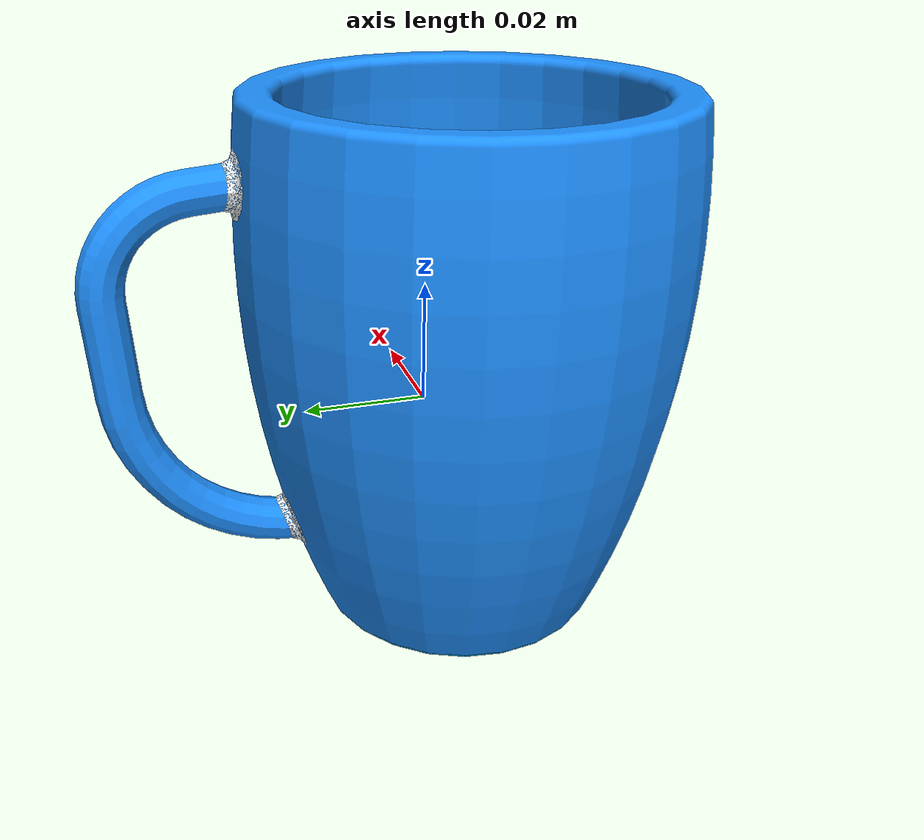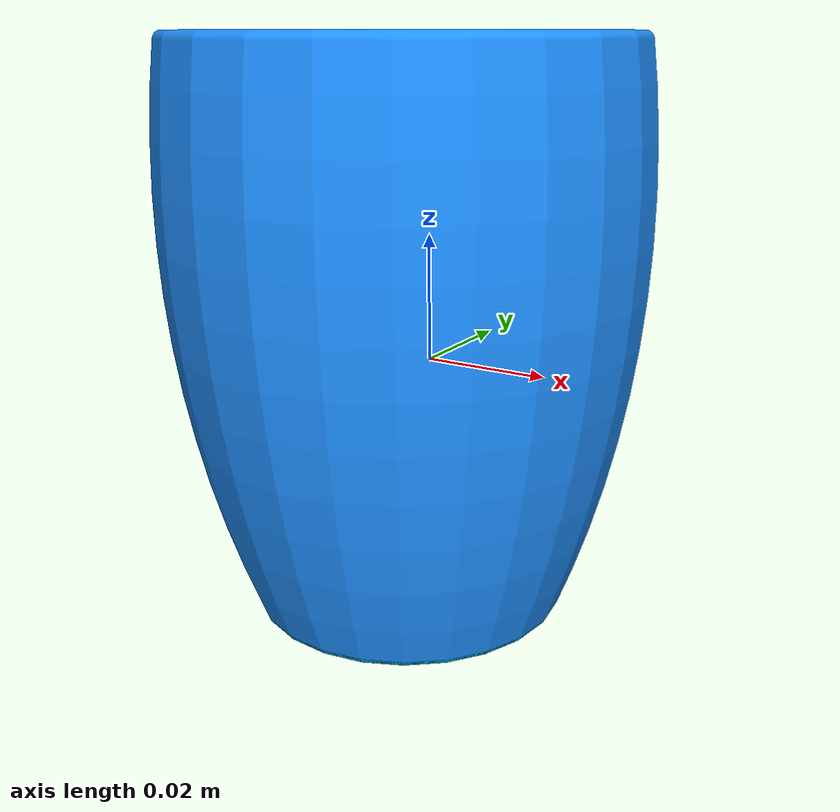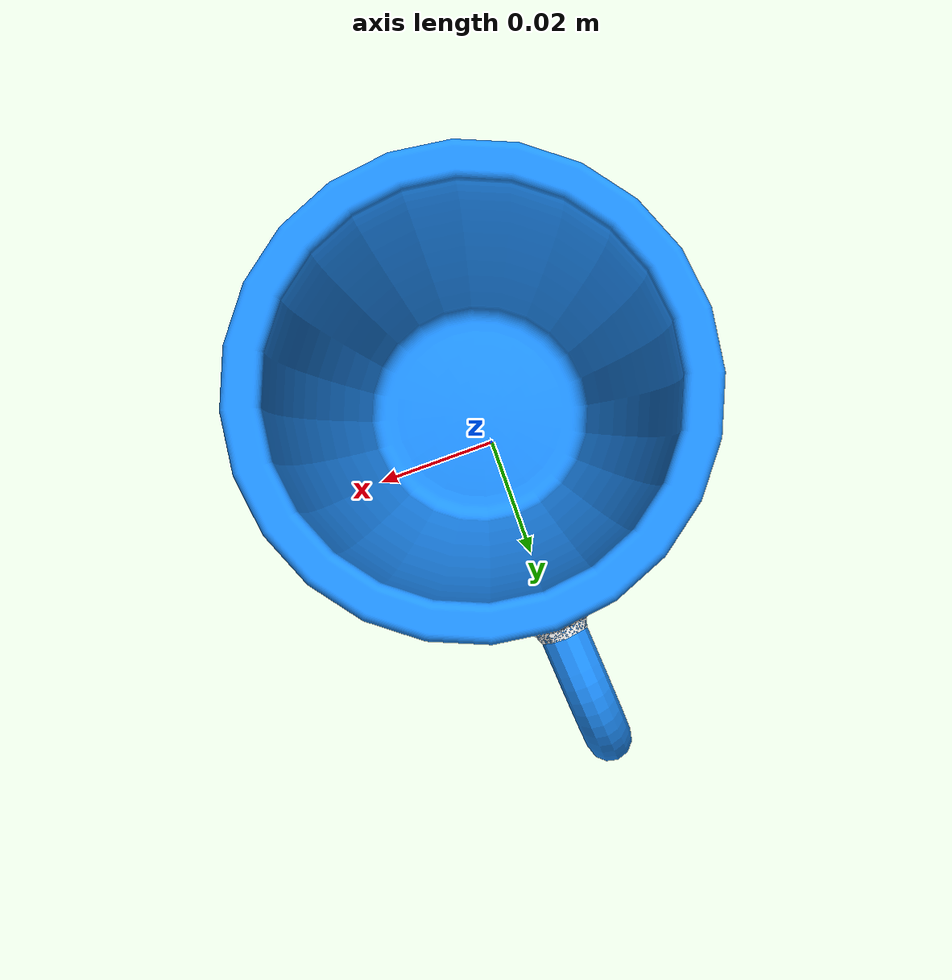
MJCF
<mujoco model="128ecbc1">
  <asset>
  <texture file="../../../textures/ceramic.png" name="tex-128ecbc1" type="2d" />
  <material name="128ecbc1" reflectance="0.5" texrepeat="1 1" texture="tex-128ecbc1" texuniform="false" />
  <mesh file="visual/model_normalized_0.obj" name="model_normalized_0_vis" scale="0.15 0.15 0.15" /><mesh file="visual/model_normalized_1.obj" name="model_normalized_1_vis" scale="0.15 0.15 0.15" /><mesh file="visual/model_normalized_2.obj" name="model_normalized_2_vis" scale="0.15 0.15 0.15" /><mesh file="collision/model_normalized_collision_13.obj" name="model_normalized_collision_13._coll" scale="0.15 0.15 0.15" /><mesh file="collision/model_normalized_collision_16.obj" name="model_normalized_collision_16._coll" scale="0.15 0.15 0.15" /><mesh file="collision/model_normalized_collision_30.obj" name="model_normalized_collision_30._coll" scale="0.15 0.15 0.15" /><mesh file="collision/model_normalized_collision_21.obj" name="model_normalized_collision_21._coll" scale="0.15 0.15 0.15" /><mesh file="collision/model_normalized_collision_1.obj" name="model_normalized_collision_1._coll" scale="0.15 0.15 0.15" /><mesh file="collision/model_normalized_collision_20.obj" name="model_normalized_collision_20._coll" scale="0.15 0.15 0.15" /><mesh file="collision/model_normalized_collision_27.obj" name="model_normalized_collision_27._coll" scale="0.15 0.15 0.15" /><mesh file="collision/model_normalized_collision_10.obj" name="model_normalized_collision_10._coll" scale="0.15 0.15 0.15" /><mesh file="collision/model_normalized_collision_24.obj" name="model_normalized_collision_24._coll" scale="0.15 0.15 0.15" /><mesh file="collision/model_normalized_collision_28.obj" name="model_normalized_collision_28._coll" scale="0.15 0.15 0.15" /><mesh file="collision/model_normalized_collision_25.obj" name="model_normalized_collision_25._coll" scale="0.15 0.15 0.15" /><mesh file="collision/model_normalized_collision_23.obj" name="model_normalized_collision_23._coll" scale="0.15 0.15 0.15" /><mesh file="collision/model_normalized_collision_6.obj" name="model_normalized_collision_6._coll" scale="0.15 0.15 0.15" /><mesh file="collision/model_normalized_collision_8.obj" name="model_normalized_collision_8._coll" scale="0.15 0.15 0.15" /><mesh file="collision/model_normalized_collision_2.obj" name="model_normalized_collision_2._coll" scale="0.15 0.15 0.15" /><mesh file="collision/model_normalized_collision_12.obj" name="model_normalized_collision_12._coll" scale="0.15 0.15 0.15" /><mesh file="collision/model_normalized_collision_4.obj" name="model_normalized_collision_4._coll" scale="0.15 0.15 0.15" /><mesh file="collision/model_normalized_collision_19.obj" name="model_normalized_collision_19._coll" scale="0.15 0.15 0.15" /><mesh file="collision/model_normalized_collision_5.obj" name="model_normalized_collision_5._coll" scale="0.15 0.15 0.15" /><mesh file="collision/model_normalized_collision_14.obj" name="model_normalized_collision_14._coll" scale="0.15 0.15 0.15" /><mesh file="collision/model_normalized_collision_11.obj" name="model_normalized_collision_11._coll" scale="0.15 0.15 0.15" /><mesh file="collision/model_normalized_collision_15.obj" name="model_normalized_collision_15._coll" scale="0.15 0.15 0.15" /><mesh file="collision/model_normalized_collision_18.obj" name="model_normalized_collision_18._coll" scale="0.15 0.15 0.15" /><mesh file="collision/model_normalized_collision_29.obj" name="model_normalized_collision_29._coll" scale="0.15 0.15 0.15" /><mesh file="collision/model_normalized_collision_26.obj" name="model_normalized_collision_26._coll" scale="0.15 0.15 0.15" /><mesh file="collision/model_normalized_collision_17.obj" name="model_normalized_collision_17._coll" scale="0.15 0.15 0.15" /><mesh file="collision/model_normalized_collision_31.obj" name="model_normalized_collision_31._coll" scale="0.15 0.15 0.15" /><mesh file="collision/model_normalized_collision_3.obj" name="model_normalized_collision_3._coll" scale="0.15 0.15 0.15" /><mesh file="collision/model_normalized_collision_9.obj" name="model_normalized_collision_9._coll" scale="0.15 0.15 0.15" /><mesh file="collision/model_normalized_collision_22.obj" name="model_normalized_collision_22._coll" scale="0.15 0.15 0.15" /><mesh file="collision/model_normalized_collision_7.obj" name="model_normalized_collision_7._coll" scale="0.15 0.15 0.15" /><mesh file="collision/model_normalized_collision_0.obj" name="model_normalized_collision_0._coll" scale="0.15 0.15 0.15" /><material name="material_0_24" specular="0.4000000000000001" shininess="0.01" rgba="0.117647 0.564706 1 1.0" /><material name="material_1_24" specular="0.4000000000000001" shininess="0.01" rgba="0 0.74902 1 1.0" /><material name="material_2_24" specular="0.4000000000000001" shininess="0.01" rgba="1 1 1 1.0" /></asset>
  <worldbody>
    <body>
      <body name="object">
      <geom solimp="0.998 0.998 0.001" solref="0.001 1" density="100" friction="0.95 0.3 0.1" type="mesh" mesh="model_normalized_0_vis" conaffinity="0" contype="0" group="1" material="material_1_24" /><geom solimp="0.998 0.998 0.001" solref="0.001 1" density="100" friction="0.95 0.3 0.1" type="mesh" mesh="model_normalized_1_vis" conaffinity="0" contype="0" group="1" material="material_2_24" /><geom solimp="0.998 0.998 0.001" solref="0.001 1" density="100" friction="0.95 0.3 0.1" type="mesh" mesh="model_normalized_2_vis" conaffinity="0" contype="0" group="1" material="material_0_24" /><geom solimp="0.998 0.998 0.001" solref="0.001 1" density="100" friction="0.95 0.3 0.1" type="mesh" mesh="model_normalized_collision_13._coll" group="0" rgba="0.8 0.8 0.8 0.0" /><geom solimp="0.998 0.998 0.001" solref="0.001 1" density="100" friction="0.95 0.3 0.1" type="mesh" mesh="model_normalized_collision_16._coll" group="0" rgba="0.8 0.8 0.8 0.0" /><geom solimp="0.998 0.998 0.001" solref="0.001 1" density="100" friction="0.95 0.3 0.1" type="mesh" mesh="model_normalized_collision_30._coll" group="0" rgba="0.8 0.8 0.8 0.0" /><geom solimp="0.998 0.998 0.001" solref="0.001 1" density="100" friction="0.95 0.3 0.1" type="mesh" mesh="model_normalized_collision_21._coll" group="0" rgba="0.8 0.8 0.8 0.0" /><geom solimp="0.998 0.998 0.001" solref="0.001 1" density="100" friction="0.95 0.3 0.1" type="mesh" mesh="model_normalized_collision_1._coll" group="0" rgba="0.8 0.8 0.8 0.0" /><geom solimp="0.998 0.998 0.001" solref="0.001 1" density="100" friction="0.95 0.3 0.1" type="mesh" mesh="model_normalized_collision_20._coll" group="0" rgba="0.8 0.8 0.8 0.0" /><geom solimp="0.998 0.998 0.001" solref="0.001 1" density="100" friction="0.95 0.3 0.1" type="mesh" mesh="model_normalized_collision_27._coll" group="0" rgba="0.8 0.8 0.8 0.0" /><geom solimp="0.998 0.998 0.001" solref="0.001 1" density="100" friction="0.95 0.3 0.1" type="mesh" mesh="model_normalized_collision_10._coll" group="0" rgba="0.8 0.8 0.8 0.0" /><geom solimp="0.998 0.998 0.001" solref="0.001 1" density="100" friction="0.95 0.3 0.1" type="mesh" mesh="model_normalized_collision_24._coll" group="0" rgba="0.8 0.8 0.8 0.0" /><geom solimp="0.998 0.998 0.001" solref="0.001 1" density="100" friction="0.95 0.3 0.1" type="mesh" mesh="model_normalized_collision_28._coll" group="0" rgba="0.8 0.8 0.8 0.0" /><geom solimp="0.998 0.998 0.001" solref="0.001 1" density="100" friction="0.95 0.3 0.1" type="mesh" mesh="model_normalized_collision_25._coll" group="0" rgba="0.8 0.8 0.8 0.0" /><geom solimp="0.998 0.998 0.001" solref="0.001 1" density="100" friction="0.95 0.3 0.1" type="mesh" mesh="model_normalized_collision_23._coll" group="0" rgba="0.8 0.8 0.8 0.0" /><geom solimp="0.998 0.998 0.001" solref="0.001 1" density="100" friction="0.95 0.3 0.1" type="mesh" mesh="model_normalized_collision_6._coll" group="0" rgba="0.8 0.8 0.8 0.0" /><geom solimp="0.998 0.998 0.001" solref="0.001 1" density="100" friction="0.95 0.3 0.1" type="mesh" mesh="model_normalized_collision_8._coll" group="0" rgba="0.8 0.8 0.8 0.0" /><geom solimp="0.998 0.998 0.001" solref="0.001 1" density="100" friction="0.95 0.3 0.1" type="mesh" mesh="model_normalized_collision_2._coll" group="0" rgba="0.8 0.8 0.8 0.0" /><geom solimp="0.998 0.998 0.001" solref="0.001 1" density="100" friction="0.95 0.3 0.1" type="mesh" mesh="model_normalized_collision_12._coll" group="0" rgba="0.8 0.8 0.8 0.0" /><geom solimp="0.998 0.998 0.001" solref="0.001 1" density="100" friction="0.95 0.3 0.1" type="mesh" mesh="model_normalized_collision_4._coll" group="0" rgba="0.8 0.8 0.8 0.0" /><geom solimp="0.998 0.998 0.001" solref="0.001 1" density="100" friction="0.95 0.3 0.1" type="mesh" mesh="model_normalized_collision_19._coll" group="0" rgba="0.8 0.8 0.8 0.0" /><geom solimp="0.998 0.998 0.001" solref="0.001 1" density="100" friction="0.95 0.3 0.1" type="mesh" mesh="model_normalized_collision_5._coll" group="0" rgba="0.8 0.8 0.8 0.0" /><geom solimp="0.998 0.998 0.001" solref="0.001 1" density="100" friction="0.95 0.3 0.1" type="mesh" mesh="model_normalized_collision_14._coll" group="0" rgba="0.8 0.8 0.8 0.0" /><geom solimp="0.998 0.998 0.001" solref="0.001 1" density="100" friction="0.95 0.3 0.1" type="mesh" mesh="model_normalized_collision_11._coll" group="0" rgba="0.8 0.8 0.8 0.0" /><geom solimp="0.998 0.998 0.001" solref="0.001 1" density="100" friction="0.95 0.3 0.1" type="mesh" mesh="model_normalized_collision_15._coll" group="0" rgba="0.8 0.8 0.8 0.0" /><geom solimp="0.998 0.998 0.001" solref="0.001 1" density="100" friction="0.95 0.3 0.1" type="mesh" mesh="model_normalized_collision_18._coll" group="0" rgba="0.8 0.8 0.8 0.0" /><geom solimp="0.998 0.998 0.001" solref="0.001 1" density="100" friction="0.95 0.3 0.1" type="mesh" mesh="model_normalized_collision_29._coll" group="0" rgba="0.8 0.8 0.8 0.0" /><geom solimp="0.998 0.998 0.001" solref="0.001 1" density="100" friction="0.95 0.3 0.1" type="mesh" mesh="model_normalized_collision_26._coll" group="0" rgba="0.8 0.8 0.8 0.0" /><geom solimp="0.998 0.998 0.001" solref="0.001 1" density="100" friction="0.95 0.3 0.1" type="mesh" mesh="model_normalized_collision_17._coll" group="0" rgba="0.8 0.8 0.8 0.0" /><geom solimp="0.998 0.998 0.001" solref="0.001 1" density="100" friction="0.95 0.3 0.1" type="mesh" mesh="model_normalized_collision_31._coll" group="0" rgba="0.8 0.8 0.8 0.0" /><geom solimp="0.998 0.998 0.001" solref="0.001 1" density="100" friction="0.95 0.3 0.1" type="mesh" mesh="model_normalized_collision_3._coll" group="0" rgba="0.8 0.8 0.8 0.0" /><geom solimp="0.998 0.998 0.001" solref="0.001 1" density="100" friction="0.95 0.3 0.1" type="mesh" mesh="model_normalized_collision_9._coll" group="0" rgba="0.8 0.8 0.8 0.0" /><geom solimp="0.998 0.998 0.001" solref="0.001 1" density="100" friction="0.95 0.3 0.1" type="mesh" mesh="model_normalized_collision_22._coll" group="0" rgba="0.8 0.8 0.8 0.0" /><geom solimp="0.998 0.998 0.001" solref="0.001 1" density="100" friction="0.95 0.3 0.1" type="mesh" mesh="model_normalized_collision_7._coll" group="0" rgba="0.8 0.8 0.8 0.0" /><geom solimp="0.998 0.998 0.001" solref="0.001 1" density="100" friction="0.95 0.3 0.1" type="mesh" mesh="model_normalized_collision_0._coll" group="0" rgba="0.8 0.8 0.8 0.0" /></body>
      <site rgba="0 0 0 0" size="0.005" pos="0.00014630684999999977 0.004956688724999999 -0.037219499100000004" name="bottom_site" />
      <site rgba="0 0 0 0" size="0.005" pos="0.00014630684999999977 0.004956688724999999 0.050666497049999995" name="top_site" />
      <site rgba="0 0 0 0" size="0.005" pos="0.0361113969 0.05259219975 0.006723498975" name="horizontal_radius_site" />
    </body>
  </worldbody>
</mujoco>
